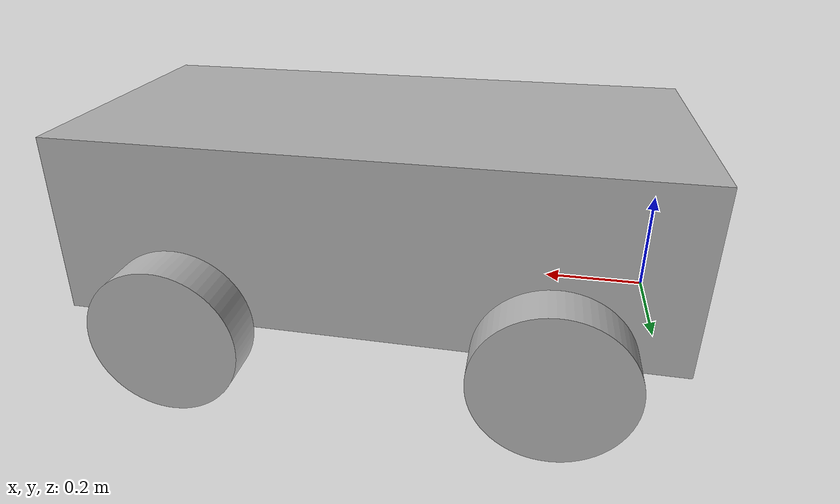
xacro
<?xml version="1.0" ?>
<robot name="robot_ex" xmlns:xacro="http://www.ros.org/wiki/xacro">

<xacro:include filename="$(find uwrt_mars_rover_description)/urdf/materials.xacro" />
<xacro:include filename="$(find uwrt_mars_rover_description)/urdf/robot_ex.trans" />
<xacro:include filename="$(find uwrt_mars_rover_description)/urdf/robot_ex.gazebo" />
<link name="base_link">
  <inertial>
    <origin rpy="0 0 0" xyz="0.5 0.25 0.275"/>
    <mass value="404.99999999999994"/>
    <inertia ixx="11.475" ixy="0.0" ixz="0.0" iyy="36.7875" iyz="0.0" izz="42.1875"/>
  </inertial>
  <visual>
    <origin rpy="0 0 0" xyz="0 0 0"/>
    <geometry>
      <mesh filename="package://uwrt_mars_rover_description/meshes/base_link.stl" scale="0.01 0.01 0.01"/>
    </geometry>
    <material name="silver"/>
  </visual>
  <collision>
    <origin rpy="0 0 0" xyz="0 0 0"/>
    <geometry>
      <mesh filename="package://uwrt_mars_rover_description/meshes/base_link.stl" scale="0.01 0.01 0.01"/>
    </geometry>
  </collision>
</link>

<link name="Component5_1">
  <inertial>
    <origin rpy="0 0 0" xyz="0.0 -0.037499999999999985 0.0"/>
    <mass value="9.940195505498954"/>
    <inertia ixx="0.043488" ixy="0.0" ixz="-0.0" iyy="0.077658" iyz="0.0" izz="0.043488"/>
  </inertial>
  <visual>
    <origin rpy="0 0 0" xyz="-0.2 -0.0 -0.125"/>
    <geometry>
      <mesh filename="package://uwrt_mars_rover_description/meshes/Component5_1.stl" scale="0.01 0.01 0.01"/>
    </geometry>
    <material name="silver"/>
  </visual>
  <collision>
    <origin rpy="0 0 0" xyz="-0.2 -0.0 -0.125"/>
    <geometry>
      <mesh filename="package://uwrt_mars_rover_description/meshes/Component5_1.stl" scale="0.01 0.01 0.01"/>
    </geometry>
  </collision>
</link>

<link name="Component4_1">
  <inertial>
    <origin rpy="0 0 0" xyz="0.0 0.03750000000000009 0.0"/>
    <mass value="9.940195505498954"/>
    <inertia ixx="0.043488" ixy="-0.0" ixz="-0.0" iyy="0.077658" iyz="0.0" izz="0.043488"/>
  </inertial>
  <visual>
    <origin rpy="0 0 0" xyz="-0.2 -0.5 -0.125"/>
    <geometry>
      <mesh filename="package://uwrt_mars_rover_description/meshes/Component4_1.stl" scale="0.01 0.01 0.01"/>
    </geometry>
    <material name="silver"/>
  </visual>
  <collision>
    <origin rpy="0 0 0" xyz="-0.2 -0.5 -0.125"/>
    <geometry>
      <mesh filename="package://uwrt_mars_rover_description/meshes/Component4_1.stl" scale="0.01 0.01 0.01"/>
    </geometry>
  </collision>
</link>

<link name="Component2_1">
  <inertial>
    <origin rpy="0 0 0" xyz="0.0 -0.0375 -1.3877787807814457e-17"/>
    <mass value="9.940195505498954"/>
    <inertia ixx="0.043488" ixy="0.0" ixz="-0.0" iyy="0.077658" iyz="0.0" izz="0.043488"/>
  </inertial>
  <visual>
    <origin rpy="0 0 0" xyz="-0.8 -0.0 -0.125"/>
    <geometry>
      <mesh filename="package://uwrt_mars_rover_description/meshes/Component2_1.stl" scale="0.01 0.01 0.01"/>
    </geometry>
    <material name="silver"/>
  </visual>
  <collision>
    <origin rpy="0 0 0" xyz="-0.8 -0.0 -0.125"/>
    <geometry>
      <mesh filename="package://uwrt_mars_rover_description/meshes/Component2_1.stl" scale="0.01 0.01 0.01"/>
    </geometry>
  </collision>
</link>

<link name="Component3_1">
  <inertial>
    <origin rpy="0 0 0" xyz="0.0 0.03750000000000009 -1.3877787807814457e-17"/>
    <mass value="9.940195505498954"/>
    <inertia ixx="0.043488" ixy="0.0" ixz="-0.0" iyy="0.077658" iyz="0.0" izz="0.043488"/>
  </inertial>
  <visual>
    <origin rpy="0 0 0" xyz="-0.8 -0.5 -0.125"/>
    <geometry>
      <mesh filename="package://uwrt_mars_rover_description/meshes/Component3_1.stl" scale="0.01 0.01 0.01"/>
    </geometry>
    <material name="silver"/>
  </visual>
  <collision>
    <origin rpy="0 0 0" xyz="-0.8 -0.5 -0.125"/>
    <geometry>
      <mesh filename="package://uwrt_mars_rover_description/meshes/Component3_1.stl" scale="0.01 0.01 0.01"/>
    </geometry>
  </collision>
</link>

<joint name="Rev1" type="continuous">
  <origin rpy="0 0 0" xyz="0.2 0.0 0.125"/>
  <parent link="base_link"/>
  <child link="Component5_1"/>
  <axis xyz="0.0 1.0 0.0"/>
</joint>

<joint name="Rev2" type="continuous">
  <origin rpy="0 0 0" xyz="0.2 0.5 0.125"/>
  <parent link="base_link"/>
  <child link="Component4_1"/>
  <axis xyz="0.0 1.0 0.0"/>
</joint>

<joint name="Rev3" type="continuous">
  <origin rpy="0 0 0" xyz="0.8 0.0 0.125"/>
  <parent link="base_link"/>
  <child link="Component2_1"/>
  <axis xyz="0.0 1.0 0.0"/>
</joint>

<joint name="Rev4" type="continuous">
  <origin rpy="0 0 0" xyz="0.8 0.5 0.125"/>
  <parent link="base_link"/>
  <child link="Component3_1"/>
  <axis xyz="0.0 1.0 0.0"/>
</joint>

</robot>

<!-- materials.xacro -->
<robot name="robot_ex" xmlns:xacro="http://www.ros.org/wiki/xacro" >

<material name="silver">
  <color rgba="0.700 0.700 0.700 1.000"/>
</material>

</robot>

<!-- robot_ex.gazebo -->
<robot name="robot_ex" xmlns:xacro="http://www.ros.org/wiki/xacro" >

<xacro:property name="body_color" value="Gazebo/Silver" />

<gazebo>
  <plugin filename="libgazebo_ros_control.so" name="gazebo_ros_control">
    <robotNamespace>/robot_ex</robotNamespace>
  </plugin>
</gazebo>
<gazebo reference="base_link">
  <material>${body_color}</material>
  <mu1>0.2</mu1>
  <mu2>0.2</mu2>
  <selfCollide>true</selfCollide>
  <gravity>true</gravity>
</gazebo>

<gazebo reference="Component5_1">
  <material>${body_color}</material>
  <mu1>0.2</mu1>
  <mu2>0.2</mu2>
  <selfCollide>true</selfCollide>
</gazebo>

<gazebo reference="Component4_1">
  <material>${body_color}</material>
  <mu1>0.2</mu1>
  <mu2>0.2</mu2>
  <selfCollide>true</selfCollide>
</gazebo>

<gazebo reference="Component2_1">
  <material>${body_color}</material>
  <mu1>0.2</mu1>
  <mu2>0.2</mu2>
  <selfCollide>true</selfCollide>
</gazebo>

<gazebo reference="Component3_1">
  <material>${body_color}</material>
  <mu1>0.2</mu1>
  <mu2>0.2</mu2>
  <selfCollide>true</selfCollide>
</gazebo>

</robot>
